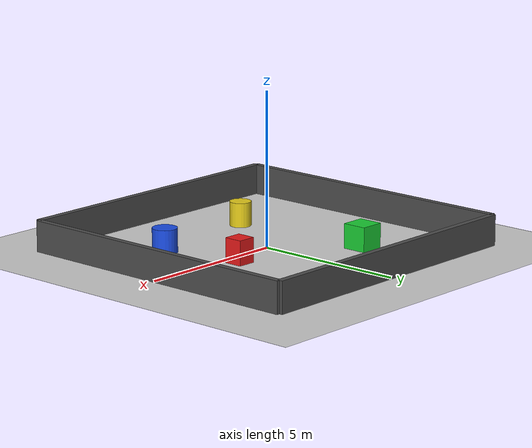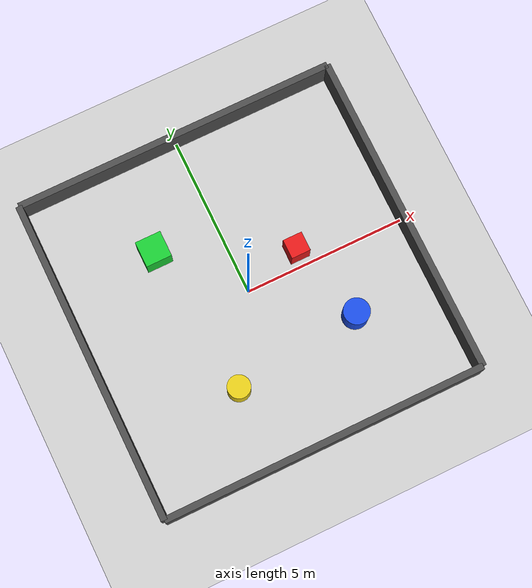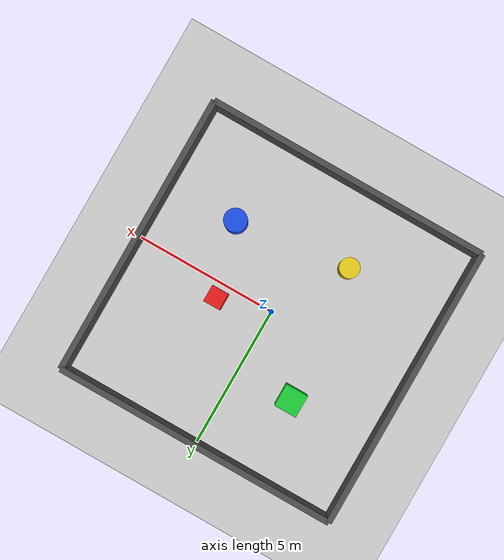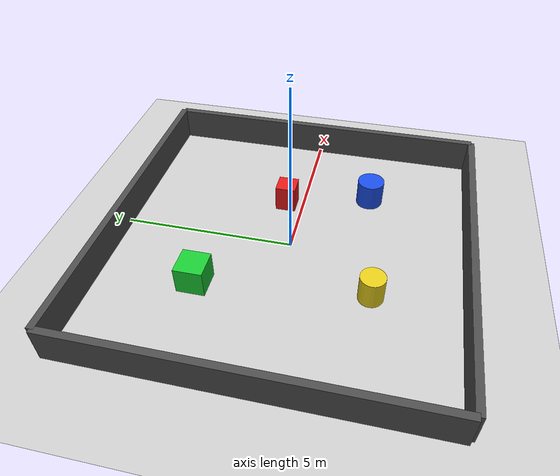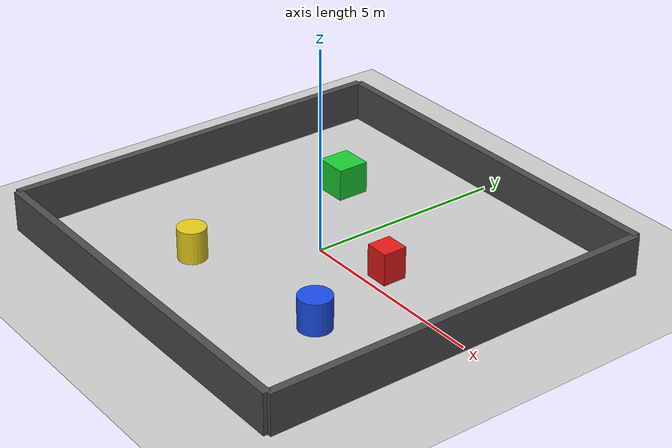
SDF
<?xml version="1.0" ?>
<sdf version="1.8">
  <world name="obstacle_world">
    <physics name="1ms" type="ignored">
      <max_step_size>0.001</max_step_size>
      <real_time_factor>1.0</real_time_factor>
    </physics>

    <plugin filename="gz-sim-physics-system" name="gz::sim::systems::Physics"/>
    <plugin filename="gz-sim-user-commands-system" name="gz::sim::systems::UserCommands"/>
    <plugin filename="gz-sim-scene-broadcaster-system" name="gz::sim::systems::SceneBroadcaster"/>
    <plugin filename="gz-sim-sensors-system" name="gz::sim::systems::Sensors">
      <render_engine>ogre2</render_engine>
    </plugin>

    <light type="directional" name="sun">
      <cast_shadows>true</cast_shadows>
      <pose>0 0 10 0 0 0</pose>
      <diffuse>0.8 0.8 0.8 1</diffuse>
      <specular>0.2 0.2 0.2 1</specular>
      <direction>-0.5 0.1 -0.9</direction>
    </light>

    <model name="ground_plane">
      <static>true</static>
      <link name="link">
        <collision name="collision">
          <geometry><plane><normal>0 0 1</normal><size>20 20</size></plane></geometry>
        </collision>
        <visual name="visual">
          <geometry><plane><normal>0 0 1</normal><size>20 20</size></plane></geometry>
          <material>
            <ambient>0.8 0.8 0.8 1</ambient>
            <diffuse>0.8 0.8 0.8 1</diffuse>
          </material>
        </visual>
      </link>
    </model>

    <model name="wall_north">
      <pose>0 5 0.5 0 0 0</pose>
      <static>true</static>
      <link name="link">
        <collision name="col"><geometry><box><size>10 0.2 1.0</size></box></geometry></collision>
        <visual name="vis">
          <geometry><box><size>10 0.2 1.0</size></box></geometry>
          <material><ambient>0.3 0.3 0.3 1</ambient><diffuse>0.3 0.3 0.3 1</diffuse></material>
        </visual>
      </link>
    </model>

    <model name="wall_south">
      <pose>0 -5 0.5 0 0 0</pose>
      <static>true</static>
      <link name="link">
        <collision name="col"><geometry><box><size>10 0.2 1.0</size></box></geometry></collision>
        <visual name="vis">
          <geometry><box><size>10 0.2 1.0</size></box></geometry>
          <material><ambient>0.3 0.3 0.3 1</ambient><diffuse>0.3 0.3 0.3 1</diffuse></material>
        </visual>
      </link>
    </model>

    <model name="wall_east">
      <pose>5 0 0.5 0 0 0</pose>
      <static>true</static>
      <link name="link">
        <collision name="col"><geometry><box><size>0.2 10 1.0</size></box></geometry></collision>
        <visual name="vis">
          <geometry><box><size>0.2 10 1.0</size></box></geometry>
          <material><ambient>0.3 0.3 0.3 1</ambient><diffuse>0.3 0.3 0.3 1</diffuse></material>
        </visual>
      </link>
    </model>

    <model name="wall_west">
      <pose>-5 0 0.5 0 0 0</pose>
      <static>true</static>
      <link name="link">
        <collision name="col"><geometry><box><size>0.2 10 1.0</size></box></geometry></collision>
        <visual name="vis">
          <geometry><box><size>0.2 10 1.0</size></box></geometry>
          <material><ambient>0.3 0.3 0.3 1</ambient><diffuse>0.3 0.3 0.3 1</diffuse></material>
        </visual>
      </link>
    </model>

    <model name="box_1">
      <pose>1.8 0.5 0.4 0 0 0</pose>
      <static>true</static>
      <link name="link">
        <collision name="col"><geometry><box><size>0.6 0.6 0.8</size></box></geometry></collision>
        <visual name="vis">
          <geometry><box><size>0.6 0.6 0.8</size></box></geometry>
          <material><ambient>0.9 0.1 0.1 1</ambient><diffuse>0.9 0.1 0.1 1</diffuse></material>
        </visual>
      </link>
    </model>

    <model name="cylinder_1">
      <pose>2.5 -2.0 0.4 0 0 0</pose>
      <static>true</static>
      <link name="link">
        <collision name="col"><geometry><cylinder><radius>0.4</radius><length>0.8</length></cylinder></geometry></collision>
        <visual name="vis">
          <geometry><cylinder><radius>0.4</radius><length>0.8</length></cylinder></geometry>
          <material><ambient>0.1 0.3 0.9 1</ambient><diffuse>0.1 0.3 0.9 1</diffuse></material>
        </visual>
      </link>
    </model>

    <model name="box_2">
      <pose>-2.0 2.2 0.4 0 0 0</pose>
      <static>true</static>
      <link name="link">
        <collision name="col"><geometry><box><size>0.8 0.8 0.8</size></box></geometry></collision>
        <visual name="vis">
          <geometry><box><size>0.8 0.8 0.8</size></box></geometry>
          <material><ambient>0.1 0.8 0.2 1</ambient><diffuse>0.1 0.8 0.2 1</diffuse></material>
        </visual>
      </link>
    </model>

    <model name="cylinder_2">
      <pose>-1.5 -2.5 0.4 0 0 0</pose>
      <static>true</static>
      <link name="link">
        <collision name="col"><geometry><cylinder><radius>0.35</radius><length>0.8</length></cylinder></geometry></collision>
        <visual name="vis">
          <geometry><cylinder><radius>0.35</radius><length>0.8</length></cylinder></geometry>
          <material><ambient>0.9 0.8 0.1 1</ambient><diffuse>0.9 0.8 0.1 1</diffuse></material>
        </visual>
      </link>
    </model>

  </world>
</sdf>
